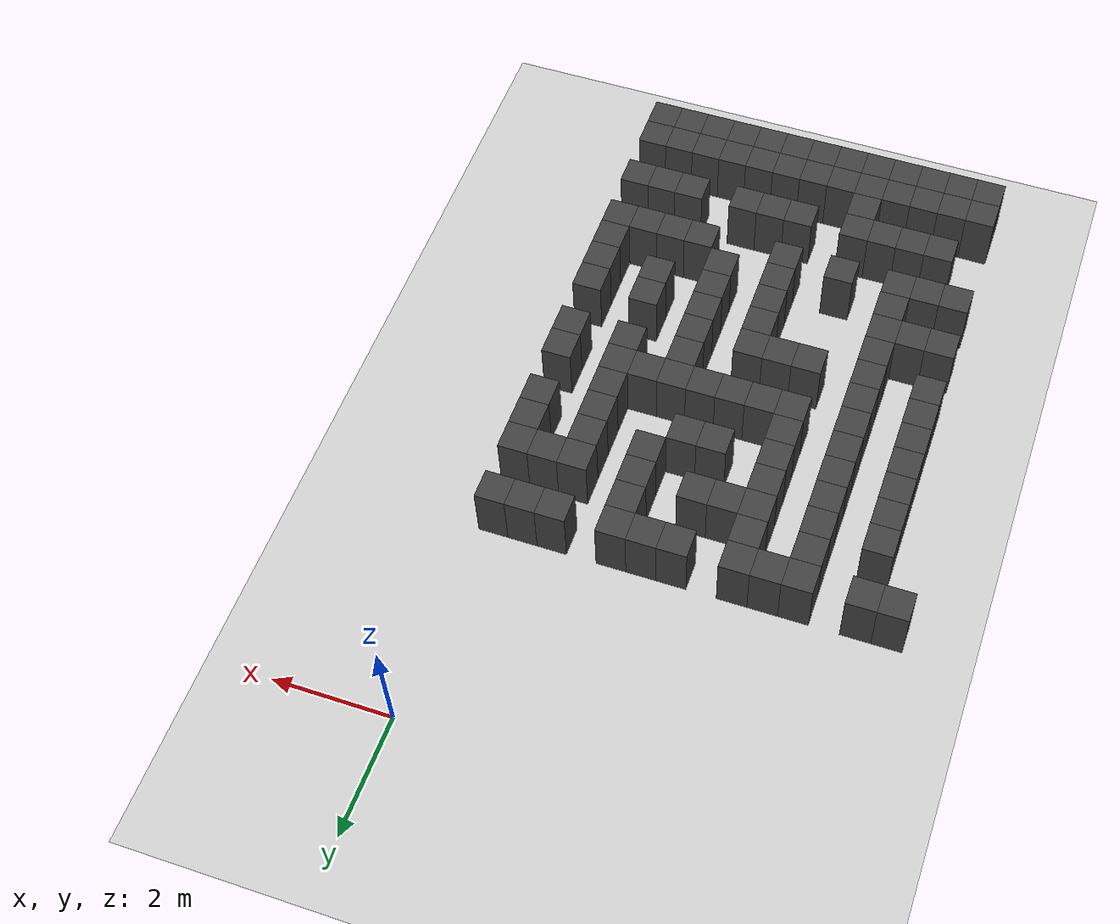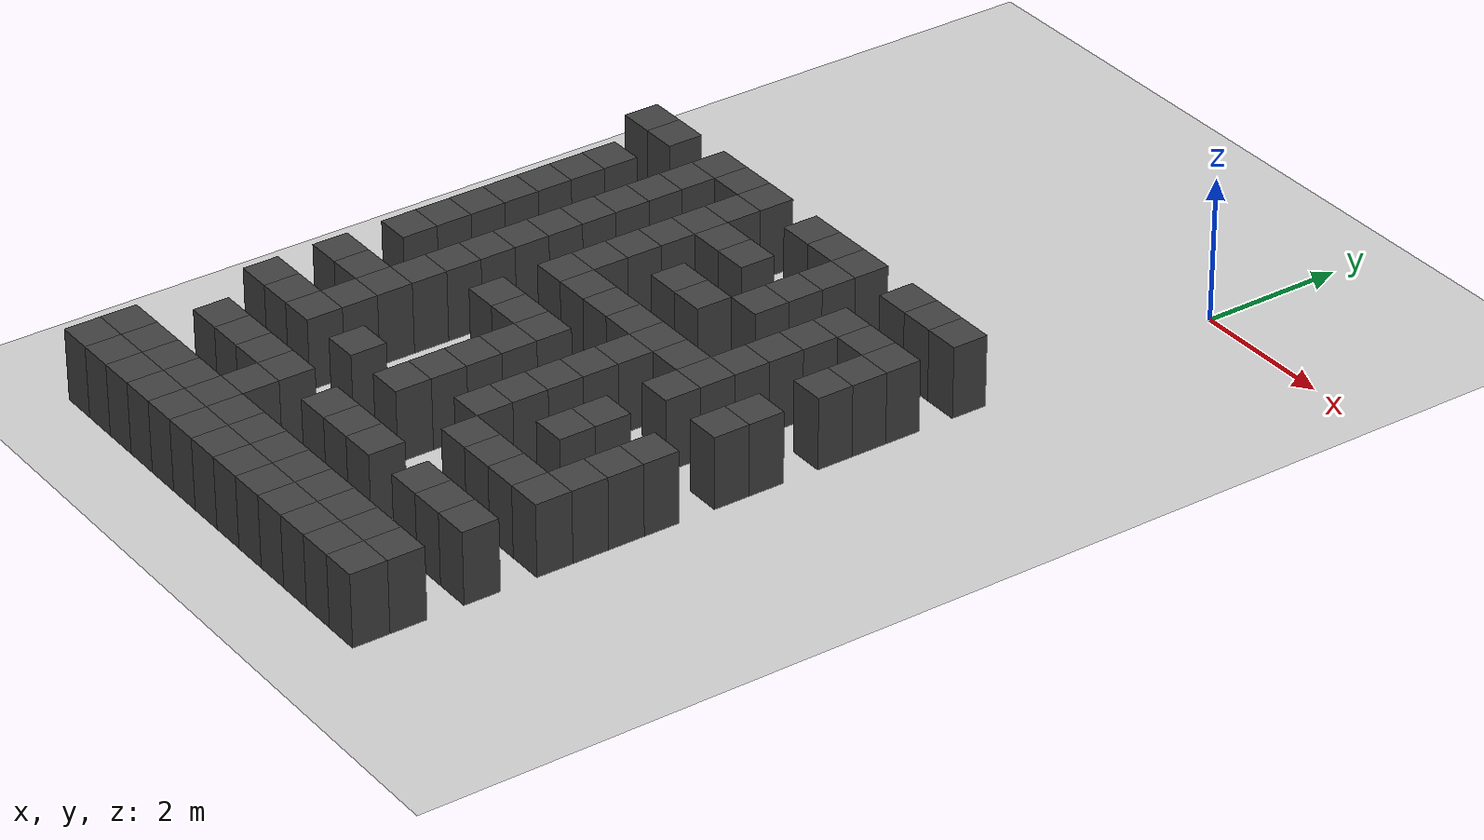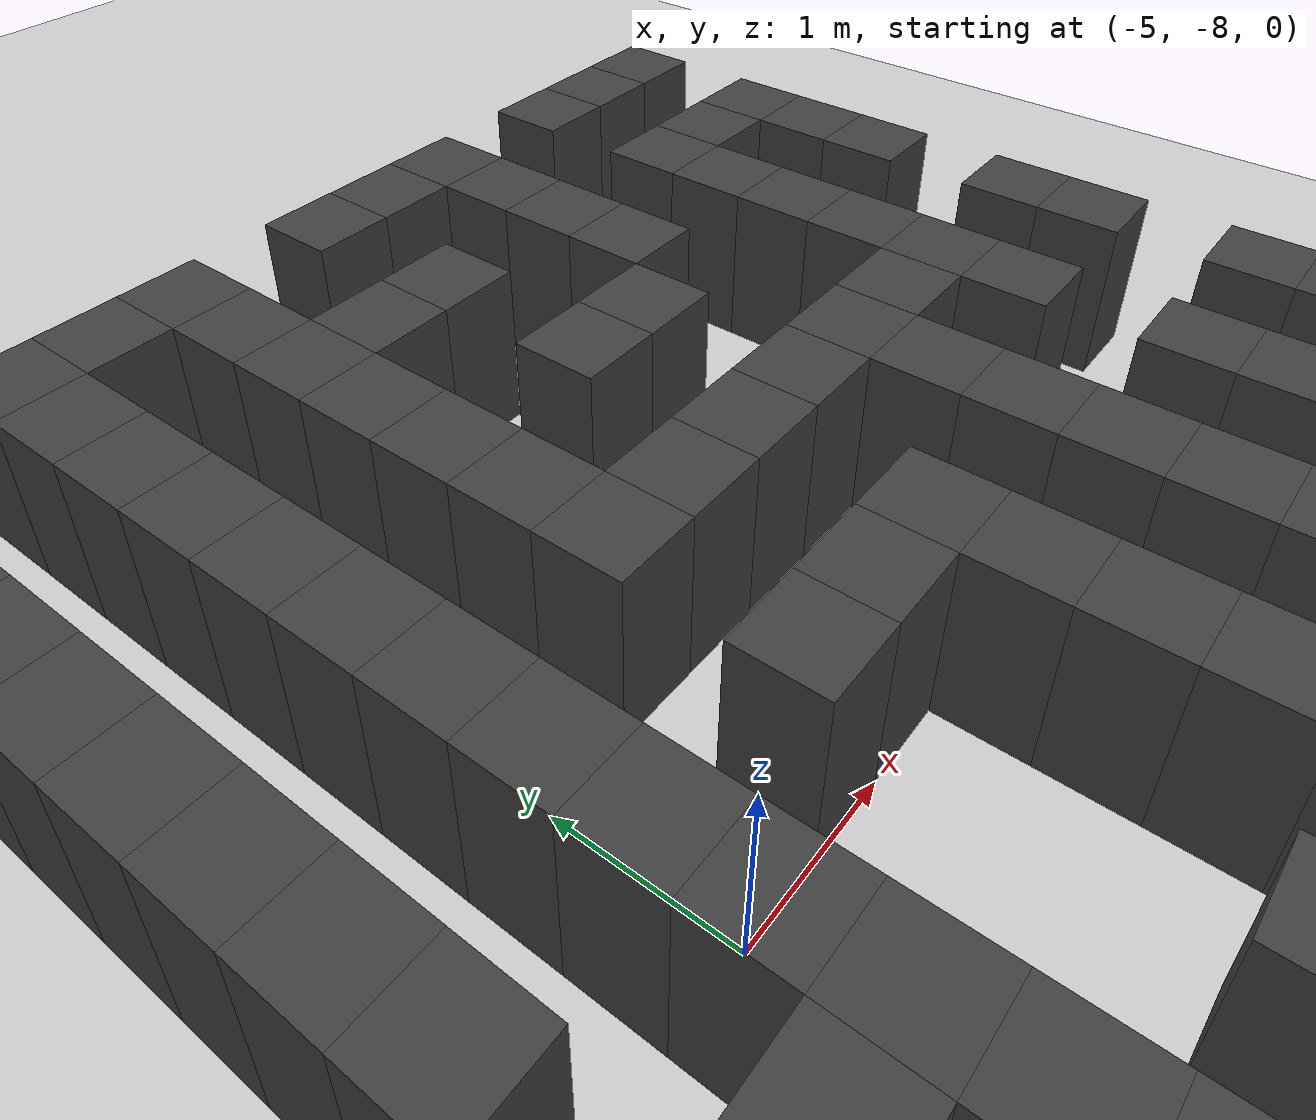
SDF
<sdf version="1.7">
 <world name="map_16271">
  <model name="ground_plane">
   <static>true</static>
   <link name="link">
    <collision name="collision">
     <geometry><plane><normal>0 0 1</normal><size>200 200</size></plane></geometry>
    </collision>
    <visual name="visual">
     <geometry><plane><normal>0 0 1</normal><size>200 200</size></plane></geometry>
     <material><ambient>0.8 0.8 0.8 1</ambient><diffuse>0.8 0.8 0.8 1</diffuse></material>
    </visual>
   </link>
  </model>
  <model name="maze_environment">
   <static>true</static>
   <link name="wall_770">
    <pose>-6.750 -3.750 0.500 0 0 0</pose>
    <collision name="col"><geometry><box><size>0.5 0.5 1.0</size></box></geometry></collision>
    <visual name="vis">
     <geometry><box><size>0.5 0.5 1.0</size></box></geometry>
     <material><ambient>0.15 0.15 0.15 1</ambient><diffuse>0.25 0.25 0.25 1</diffuse></material>
    </visual>
   </link>
   <link name="wall_771">
    <pose>-6.250 -3.750 0.500 0 0 0</pose>
    <collision name="col"><geometry><box><size>0.5 0.5 1.0</size></box></geometry></collision>
    <visual name="vis">
     <geometry><box><size>0.5 0.5 1.0</size></box></geometry>
     <material><ambient>0.15 0.15 0.15 1</ambient><diffuse>0.25 0.25 0.25 1</diffuse></material>
    </visual>
   </link>
   <link name="wall_772">
    <pose>-5.250 -3.750 0.500 0 0 0</pose>
    <collision name="col"><geometry><box><size>0.5 0.5 1.0</size></box></geometry></collision>
    <visual name="vis">
     <geometry><box><size>0.5 0.5 1.0</size></box></geometry>
     <material><ambient>0.15 0.15 0.15 1</ambient><diffuse>0.25 0.25 0.25 1</diffuse></material>
    </visual>
   </link>
   <link name="wall_773">
    <pose>-4.750 -3.750 0.500 0 0 0</pose>
    <collision name="col"><geometry><box><size>0.5 0.5 1.0</size></box></geometry></collision>
    <visual name="vis">
     <geometry><box><size>0.5 0.5 1.0</size></box></geometry>
     <material><ambient>0.15 0.15 0.15 1</ambient><diffuse>0.25 0.25 0.25 1</diffuse></material>
    </visual>
   </link>
   <link name="wall_774">
    <pose>-4.250 -3.750 0.500 0 0 0</pose>
    <collision name="col"><geometry><box><size>0.5 0.5 1.0</size></box></geometry></collision>
    <visual name="vis">
     <geometry><box><size>0.5 0.5 1.0</size></box></geometry>
     <material><ambient>0.15 0.15 0.15 1</ambient><diffuse>0.25 0.25 0.25 1</diffuse></material>
    </visual>
   </link>
   <link name="wall_775">
    <pose>-3.250 -3.750 0.500 0 0 0</pose>
    <collision name="col"><geometry><box><size>0.5 0.5 1.0</size></box></geometry></collision>
    <visual name="vis">
     <geometry><box><size>0.5 0.5 1.0</size></box></geometry>
     <material><ambient>0.15 0.15 0.15 1</ambient><diffuse>0.25 0.25 0.25 1</diffuse></material>
    </visual>
   </link>
   <link name="wall_776">
    <pose>-2.750 -3.750 0.500 0 0 0</pose>
    <collision name="col"><geometry><box><size>0.5 0.5 1.0</size></box></geometry></collision>
    <visual name="vis">
     <geometry><box><size>0.5 0.5 1.0</size></box></geometry>
     <material><ambient>0.15 0.15 0.15 1</ambient><diffuse>0.25 0.25 0.25 1</diffuse></material>
    </visual>
   </link>
   <link name="wall_777">
    <pose>-2.250 -3.750 0.500 0 0 0</pose>
    <collision name="col"><geometry><box><size>0.5 0.5 1.0</size></box></geometry></collision>
    <visual name="vis">
     <geometry><box><size>0.5 0.5 1.0</size></box></geometry>
     <material><ambient>0.15 0.15 0.15 1</ambient><diffuse>0.25 0.25 0.25 1</diffuse></material>
    </visual>
   </link>
   <link name="wall_778">
    <pose>-1.250 -3.750 0.500 0 0 0</pose>
    <collision name="col"><geometry><box><size>0.5 0.5 1.0</size></box></geometry></collision>
    <visual name="vis">
     <geometry><box><size>0.5 0.5 1.0</size></box></geometry>
     <material><ambient>0.15 0.15 0.15 1</ambient><diffuse>0.25 0.25 0.25 1</diffuse></material>
    </visual>
   </link>
   <link name="wall_779">
    <pose>-0.750 -3.750 0.500 0 0 0</pose>
    <collision name="col"><geometry><box><size>0.5 0.5 1.0</size></box></geometry></collision>
    <visual name="vis">
     <geometry><box><size>0.5 0.5 1.0</size></box></geometry>
     <material><ambient>0.15 0.15 0.15 1</ambient><diffuse>0.25 0.25 0.25 1</diffuse></material>
    </visual>
   </link>
   <link name="wall_780">
    <pose>-0.250 -3.750 0.500 0 0 0</pose>
    <collision name="col"><geometry><box><size>0.5 0.5 1.0</size></box></geometry></collision>
    <visual name="vis">
     <geometry><box><size>0.5 0.5 1.0</size></box></geometry>
     <material><ambient>0.15 0.15 0.15 1</ambient><diffuse>0.25 0.25 0.25 1</diffuse></material>
    </visual>
   </link>
   <link name="wall_801">
    <pose>-5.250 -4.250 0.500 0 0 0</pose>
    <collision name="col"><geometry><box><size>0.5 0.5 1.0</size></box></geometry></collision>
    <visual name="vis">
     <geometry><box><size>0.5 0.5 1.0</size></box></geometry>
     <material><ambient>0.15 0.15 0.15 1</ambient><diffuse>0.25 0.25 0.25 1</diffuse></material>
    </visual>
   </link>
   <link name="wall_802">
    <pose>-4.250 -4.250 0.500 0 0 0</pose>
    <collision name="col"><geometry><box><size>0.5 0.5 1.0</size></box></geometry></collision>
    <visual name="vis">
     <geometry><box><size>0.5 0.5 1.0</size></box></geometry>
     <material><ambient>0.15 0.15 0.15 1</ambient><diffuse>0.25 0.25 0.25 1</diffuse></material>
    </visual>
   </link>
   <link name="wall_803">
    <pose>-2.250 -4.250 0.500 0 0 0</pose>
    <collision name="col"><geometry><box><size>0.5 0.5 1.0</size></box></geometry></collision>
    <visual name="vis">
     <geometry><box><size>0.5 0.5 1.0</size></box></geometry>
     <material><ambient>0.15 0.15 0.15 1</ambient><diffuse>0.25 0.25 0.25 1</diffuse></material>
    </visual>
   </link>
   <link name="wall_819">
    <pose>-6.250 -4.750 0.500 0 0 0</pose>
    <collision name="col"><geometry><box><size>0.5 0.5 1.0</size></box></geometry></collision>
    <visual name="vis">
     <geometry><box><size>0.5 0.5 1.0</size></box></geometry>
     <material><ambient>0.15 0.15 0.15 1</ambient><diffuse>0.25 0.25 0.25 1</diffuse></material>
    </visual>
   </link>
   <link name="wall_820">
    <pose>-5.250 -4.750 0.500 0 0 0</pose>
    <collision name="col"><geometry><box><size>0.5 0.5 1.0</size></box></geometry></collision>
    <visual name="vis">
     <geometry><box><size>0.5 0.5 1.0</size></box></geometry>
     <material><ambient>0.15 0.15 0.15 1</ambient><diffuse>0.25 0.25 0.25 1</diffuse></material>
    </visual>
   </link>
   <link name="wall_821">
    <pose>-4.250 -4.750 0.500 0 0 0</pose>
    <collision name="col"><geometry><box><size>0.5 0.5 1.0</size></box></geometry></collision>
    <visual name="vis">
     <geometry><box><size>0.5 0.5 1.0</size></box></geometry>
     <material><ambient>0.15 0.15 0.15 1</ambient><diffuse>0.25 0.25 0.25 1</diffuse></material>
    </visual>
   </link>
   <link name="wall_822">
    <pose>-3.750 -4.750 0.500 0 0 0</pose>
    <collision name="col"><geometry><box><size>0.5 0.5 1.0</size></box></geometry></collision>
    <visual name="vis">
     <geometry><box><size>0.5 0.5 1.0</size></box></geometry>
     <material><ambient>0.15 0.15 0.15 1</ambient><diffuse>0.25 0.25 0.25 1</diffuse></material>
    </visual>
   </link>
   <link name="wall_823">
    <pose>-3.250 -4.750 0.500 0 0 0</pose>
    <collision name="col"><geometry><box><size>0.5 0.5 1.0</size></box></geometry></collision>
    <visual name="vis">
     <geometry><box><size>0.5 0.5 1.0</size></box></geometry>
     <material><ambient>0.15 0.15 0.15 1</ambient><diffuse>0.25 0.25 0.25 1</diffuse></material>
    </visual>
   </link>
   <link name="wall_824">
    <pose>-2.250 -4.750 0.500 0 0 0</pose>
    <collision name="col"><geometry><box><size>0.5 0.5 1.0</size></box></geometry></collision>
    <visual name="vis">
     <geometry><box><size>0.5 0.5 1.0</size></box></geometry>
     <material><ambient>0.15 0.15 0.15 1</ambient><diffuse>0.25 0.25 0.25 1</diffuse></material>
    </visual>
   </link>
   <link name="wall_825">
    <pose>-1.250 -4.750 0.500 0 0 0</pose>
    <collision name="col"><geometry><box><size>0.5 0.5 1.0</size></box></geometry></collision>
    <visual name="vis">
     <geometry><box><size>0.5 0.5 1.0</size></box></geometry>
     <material><ambient>0.15 0.15 0.15 1</ambient><diffuse>0.25 0.25 0.25 1</diffuse></material>
    </visual>
   </link>
   <link name="wall_826">
    <pose>-0.750 -4.750 0.500 0 0 0</pose>
    <collision name="col"><geometry><box><size>0.5 0.5 1.0</size></box></geometry></collision>
    <visual name="vis">
     <geometry><box><size>0.5 0.5 1.0</size></box></geometry>
     <material><ambient>0.15 0.15 0.15 1</ambient><diffuse>0.25 0.25 0.25 1</diffuse></material>
    </visual>
   </link>
   <link name="wall_827">
    <pose>-0.250 -4.750 0.500 0 0 0</pose>
    <collision name="col"><geometry><box><size>0.5 0.5 1.0</size></box></geometry></collision>
    <visual name="vis">
     <geometry><box><size>0.5 0.5 1.0</size></box></geometry>
     <material><ambient>0.15 0.15 0.15 1</ambient><diffuse>0.25 0.25 0.25 1</diffuse></material>
    </visual>
   </link>
   <link name="wall_849">
    <pose>-6.250 -5.250 0.500 0 0 0</pose>
    <collision name="col"><geometry><box><size>0.5 0.5 1.0</size></box></geometry></collision>
    <visual name="vis">
     <geometry><box><size>0.5 0.5 1.0</size></box></geometry>
     <material><ambient>0.15 0.15 0.15 1</ambient><diffuse>0.25 0.25 0.25 1</diffuse></material>
    </visual>
   </link>
   <link name="wall_850">
    <pose>-5.250 -5.250 0.500 0 0 0</pose>
    <collision name="col"><geometry><box><size>0.5 0.5 1.0</size></box></geometry></collision>
    <visual name="vis">
     <geometry><box><size>0.5 0.5 1.0</size></box></geometry>
     <material><ambient>0.15 0.15 0.15 1</ambient><diffuse>0.25 0.25 0.25 1</diffuse></material>
    </visual>
   </link>
   <link name="wall_851">
    <pose>-4.250 -5.250 0.500 0 0 0</pose>
    <collision name="col"><geometry><box><size>0.5 0.5 1.0</size></box></geometry></collision>
    <visual name="vis">
     <geometry><box><size>0.5 0.5 1.0</size></box></geometry>
     <material><ambient>0.15 0.15 0.15 1</ambient><diffuse>0.25 0.25 0.25 1</diffuse></material>
    </visual>
   </link>
   <link name="wall_852">
    <pose>-2.250 -5.250 0.500 0 0 0</pose>
    <collision name="col"><geometry><box><size>0.5 0.5 1.0</size></box></geometry></collision>
    <visual name="vis">
     <geometry><box><size>0.5 0.5 1.0</size></box></geometry>
     <material><ambient>0.15 0.15 0.15 1</ambient><diffuse>0.25 0.25 0.25 1</diffuse></material>
    </visual>
   </link>
   <link name="wall_853">
    <pose>-1.250 -5.250 0.500 0 0 0</pose>
    <collision name="col"><geometry><box><size>0.5 0.5 1.0</size></box></geometry></collision>
    <visual name="vis">
     <geometry><box><size>0.5 0.5 1.0</size></box></geometry>
     <material><ambient>0.15 0.15 0.15 1</ambient><diffuse>0.25 0.25 0.25 1</diffuse></material>
    </visual>
   </link>
   <link name="wall_854">
    <pose>-0.250 -5.250 0.500 0 0 0</pose>
    <collision name="col"><geometry><box><size>0.5 0.5 1.0</size></box></geometry></collision>
    <visual name="vis">
     <geometry><box><size>0.5 0.5 1.0</size></box></geometry>
     <material><ambient>0.15 0.15 0.15 1</ambient><diffuse>0.25 0.25 0.25 1</diffuse></material>
    </visual>
   </link>
   <link name="wall_868">
    <pose>-6.250 -5.750 0.500 0 0 0</pose>
    <collision name="col"><geometry><box><size>0.5 0.5 1.0</size></box></geometry></collision>
    <visual name="vis">
     <geometry><box><size>0.5 0.5 1.0</size></box></geometry>
     <material><ambient>0.15 0.15 0.15 1</ambient><diffuse>0.25 0.25 0.25 1</diffuse></material>
    </visual>
   </link>
   <link name="wall_869">
    <pose>-5.250 -5.750 0.500 0 0 0</pose>
    <collision name="col"><geometry><box><size>0.5 0.5 1.0</size></box></geometry></collision>
    <visual name="vis">
     <geometry><box><size>0.5 0.5 1.0</size></box></geometry>
     <material><ambient>0.15 0.15 0.15 1</ambient><diffuse>0.25 0.25 0.25 1</diffuse></material>
    </visual>
   </link>
   <link name="wall_870">
    <pose>-4.250 -5.750 0.500 0 0 0</pose>
    <collision name="col"><geometry><box><size>0.5 0.5 1.0</size></box></geometry></collision>
    <visual name="vis">
     <geometry><box><size>0.5 0.5 1.0</size></box></geometry>
     <material><ambient>0.15 0.15 0.15 1</ambient><diffuse>0.25 0.25 0.25 1</diffuse></material>
    </visual>
   </link>
   <link name="wall_871">
    <pose>-3.250 -5.750 0.500 0 0 0</pose>
    <collision name="col"><geometry><box><size>0.5 0.5 1.0</size></box></geometry></collision>
    <visual name="vis">
     <geometry><box><size>0.5 0.5 1.0</size></box></geometry>
     <material><ambient>0.15 0.15 0.15 1</ambient><diffuse>0.25 0.25 0.25 1</diffuse></material>
    </visual>
   </link>
   <link name="wall_872">
    <pose>-2.750 -5.750 0.500 0 0 0</pose>
    <collision name="col"><geometry><box><size>0.5 0.5 1.0</size></box></geometry></collision>
    <visual name="vis">
     <geometry><box><size>0.5 0.5 1.0</size></box></geometry>
     <material><ambient>0.15 0.15 0.15 1</ambient><diffuse>0.25 0.25 0.25 1</diffuse></material>
    </visual>
   </link>
   <link name="wall_873">
    <pose>-1.250 -5.750 0.500 0 0 0</pose>
    <collision name="col"><geometry><box><size>0.5 0.5 1.0</size></box></geometry></collision>
    <visual name="vis">
     <geometry><box><size>0.5 0.5 1.0</size></box></geometry>
     <material><ambient>0.15 0.15 0.15 1</ambient><diffuse>0.25 0.25 0.25 1</diffuse></material>
    </visual>
   </link>
   <link name="wall_874">
    <pose>-0.250 -5.750 0.500 0 0 0</pose>
    <collision name="col"><geometry><box><size>0.5 0.5 1.0</size></box></geometry></collision>
    <visual name="vis">
     <geometry><box><size>0.5 0.5 1.0</size></box></geometry>
     <material><ambient>0.15 0.15 0.15 1</ambient><diffuse>0.25 0.25 0.25 1</diffuse></material>
    </visual>
   </link>
   <link name="wall_896">
    <pose>-6.250 -6.250 0.500 0 0 0</pose>
    <collision name="col"><geometry><box><size>0.5 0.5 1.0</size></box></geometry></collision>
    <visual name="vis">
     <geometry><box><size>0.5 0.5 1.0</size></box></geometry>
     <material><ambient>0.15 0.15 0.15 1</ambient><diffuse>0.25 0.25 0.25 1</diffuse></material>
    </visual>
   </link>
   <link name="wall_897">
    <pose>-5.250 -6.250 0.500 0 0 0</pose>
    <collision name="col"><geometry><box><size>0.5 0.5 1.0</size></box></geometry></collision>
    <visual name="vis">
     <geometry><box><size>0.5 0.5 1.0</size></box></geometry>
     <material><ambient>0.15 0.15 0.15 1</ambient><diffuse>0.25 0.25 0.25 1</diffuse></material>
    </visual>
   </link>
   <link name="wall_898">
    <pose>-4.250 -6.250 0.500 0 0 0</pose>
    <collision name="col"><geometry><box><size>0.5 0.5 1.0</size></box></geometry></collision>
    <visual name="vis">
     <geometry><box><size>0.5 0.5 1.0</size></box></geometry>
     <material><ambient>0.15 0.15 0.15 1</ambient><diffuse>0.25 0.25 0.25 1</diffuse></material>
    </visual>
   </link>
   <link name="wall_899">
    <pose>-1.250 -6.250 0.500 0 0 0</pose>
    <collision name="col"><geometry><box><size>0.5 0.5 1.0</size></box></geometry></collision>
    <visual name="vis">
     <geometry><box><size>0.5 0.5 1.0</size></box></geometry>
     <material><ambient>0.15 0.15 0.15 1</ambient><diffuse>0.25 0.25 0.25 1</diffuse></material>
    </visual>
   </link>
   <link name="wall_917">
    <pose>-6.250 -6.750 0.500 0 0 0</pose>
    <collision name="col"><geometry><box><size>0.5 0.5 1.0</size></box></geometry></collision>
    <visual name="vis">
     <geometry><box><size>0.5 0.5 1.0</size></box></geometry>
     <material><ambient>0.15 0.15 0.15 1</ambient><diffuse>0.25 0.25 0.25 1</diffuse></material>
    </visual>
   </link>
   <link name="wall_918">
    <pose>-5.250 -6.750 0.500 0 0 0</pose>
    <collision name="col"><geometry><box><size>0.5 0.5 1.0</size></box></geometry></collision>
    <visual name="vis">
     <geometry><box><size>0.5 0.5 1.0</size></box></geometry>
     <material><ambient>0.15 0.15 0.15 1</ambient><diffuse>0.25 0.25 0.25 1</diffuse></material>
    </visual>
   </link>
   <link name="wall_919">
    <pose>-4.250 -6.750 0.500 0 0 0</pose>
    <collision name="col"><geometry><box><size>0.5 0.5 1.0</size></box></geometry></collision>
    <visual name="vis">
     <geometry><box><size>0.5 0.5 1.0</size></box></geometry>
     <material><ambient>0.15 0.15 0.15 1</ambient><diffuse>0.25 0.25 0.25 1</diffuse></material>
    </visual>
   </link>
   <link name="wall_920">
    <pose>-3.750 -6.750 0.500 0 0 0</pose>
    <collision name="col"><geometry><box><size>0.5 0.5 1.0</size></box></geometry></collision>
    <visual name="vis">
     <geometry><box><size>0.5 0.5 1.0</size></box></geometry>
     <material><ambient>0.15 0.15 0.15 1</ambient><diffuse>0.25 0.25 0.25 1</diffuse></material>
    </visual>
   </link>
   <link name="wall_921">
    <pose>-3.250 -6.750 0.500 0 0 0</pose>
    <collision name="col"><geometry><box><size>0.5 0.5 1.0</size></box></geometry></collision>
    <visual name="vis">
     <geometry><box><size>0.5 0.5 1.0</size></box></geometry>
     <material><ambient>0.15 0.15 0.15 1</ambient><diffuse>0.25 0.25 0.25 1</diffuse></material>
    </visual>
   </link>
   <link name="wall_922">
    <pose>-2.750 -6.750 0.500 0 0 0</pose>
    <collision name="col"><geometry><box><size>0.5 0.5 1.0</size></box></geometry></collision>
    <visual name="vis">
     <geometry><box><size>0.5 0.5 1.0</size></box></geometry>
     <material><ambient>0.15 0.15 0.15 1</ambient><diffuse>0.25 0.25 0.25 1</diffuse></material>
    </visual>
   </link>
   <link name="wall_923">
    <pose>-2.250 -6.750 0.500 0 0 0</pose>
    <collision name="col"><geometry><box><size>0.5 0.5 1.0</size></box></geometry></collision>
    <visual name="vis">
     <geometry><box><size>0.5 0.5 1.0</size></box></geometry>
     <material><ambient>0.15 0.15 0.15 1</ambient><diffuse>0.25 0.25 0.25 1</diffuse></material>
    </visual>
   </link>
   <link name="wall_924">
    <pose>-1.750 -6.750 0.500 0 0 0</pose>
    <collision name="col"><geometry><box><size>0.5 0.5 1.0</size></box></geometry></collision>
    <visual name="vis">
     <geometry><box><size>0.5 0.5 1.0</size></box></geometry>
     <material><ambient>0.15 0.15 0.15 1</ambient><diffuse>0.25 0.25 0.25 1</diffuse></material>
    </visual>
   </link>
   <link name="wall_925">
    <pose>-1.250 -6.750 0.500 0 0 0</pose>
    <collision name="col"><geometry><box><size>0.5 0.5 1.0</size></box></geometry></collision>
    <visual name="vis">
     <geometry><box><size>0.5 0.5 1.0</size></box></geometry>
     <material><ambient>0.15 0.15 0.15 1</ambient><diffuse>0.25 0.25 0.25 1</diffuse></material>
    </visual>
   </link>
   <link name="wall_926">
    <pose>-0.250 -6.750 0.500 0 0 0</pose>
    <collision name="col"><geometry><box><size>0.5 0.5 1.0</size></box></geometry></collision>
    <visual name="vis">
     <geometry><box><size>0.5 0.5 1.0</size></box></geometry>
     <material><ambient>0.15 0.15 0.15 1</ambient><diffuse>0.25 0.25 0.25 1</diffuse></material>
    </visual>
   </link>
   <link name="wall_945">
    <pose>-6.250 -7.250 0.500 0 0 0</pose>
    <collision name="col"><geometry><box><size>0.5 0.5 1.0</size></box></geometry></collision>
    <visual name="vis">
     <geometry><box><size>0.5 0.5 1.0</size></box></geometry>
     <material><ambient>0.15 0.15 0.15 1</ambient><diffuse>0.25 0.25 0.25 1</diffuse></material>
    </visual>
   </link>
   <link name="wall_946">
    <pose>-5.250 -7.250 0.500 0 0 0</pose>
    <collision name="col"><geometry><box><size>0.5 0.5 1.0</size></box></geometry></collision>
    <visual name="vis">
     <geometry><box><size>0.5 0.5 1.0</size></box></geometry>
     <material><ambient>0.15 0.15 0.15 1</ambient><diffuse>0.25 0.25 0.25 1</diffuse></material>
    </visual>
   </link>
   <link name="wall_947">
    <pose>-2.250 -7.250 0.500 0 0 0</pose>
    <collision name="col"><geometry><box><size>0.5 0.5 1.0</size></box></geometry></collision>
    <visual name="vis">
     <geometry><box><size>0.5 0.5 1.0</size></box></geometry>
     <material><ambient>0.15 0.15 0.15 1</ambient><diffuse>0.25 0.25 0.25 1</diffuse></material>
    </visual>
   </link>
   <link name="wall_948">
    <pose>-1.250 -7.250 0.500 0 0 0</pose>
    <collision name="col"><geometry><box><size>0.5 0.5 1.0</size></box></geometry></collision>
    <visual name="vis">
     <geometry><box><size>0.5 0.5 1.0</size></box></geometry>
     <material><ambient>0.15 0.15 0.15 1</ambient><diffuse>0.25 0.25 0.25 1</diffuse></material>
    </visual>
   </link>
   <link name="wall_949">
    <pose>-0.250 -7.250 0.500 0 0 0</pose>
    <collision name="col"><geometry><box><size>0.5 0.5 1.0</size></box></geometry></collision>
    <visual name="vis">
     <geometry><box><size>0.5 0.5 1.0</size></box></geometry>
     <material><ambient>0.15 0.15 0.15 1</ambient><diffuse>0.25 0.25 0.25 1</diffuse></material>
    </visual>
   </link>
   <link name="wall_967">
    <pose>-6.250 -7.750 0.500 0 0 0</pose>
    <collision name="col"><geometry><box><size>0.5 0.5 1.0</size></box></geometry></collision>
    <visual name="vis">
     <geometry><box><size>0.5 0.5 1.0</size></box></geometry>
     <material><ambient>0.15 0.15 0.15 1</ambient><diffuse>0.25 0.25 0.25 1</diffuse></material>
    </visual>
   </link>
   <link name="wall_968">
    <pose>-5.250 -7.750 0.500 0 0 0</pose>
    <collision name="col"><geometry><box><size>0.5 0.5 1.0</size></box></geometry></collision>
    <visual name="vis">
     <geometry><box><size>0.5 0.5 1.0</size></box></geometry>
     <material><ambient>0.15 0.15 0.15 1</ambient><diffuse>0.25 0.25 0.25 1</diffuse></material>
    </visual>
   </link>
   <link name="wall_969">
    <pose>-4.250 -7.750 0.500 0 0 0</pose>
    <collision name="col"><geometry><box><size>0.5 0.5 1.0</size></box></geometry></collision>
    <visual name="vis">
     <geometry><box><size>0.5 0.5 1.0</size></box></geometry>
     <material><ambient>0.15 0.15 0.15 1</ambient><diffuse>0.25 0.25 0.25 1</diffuse></material>
    </visual>
   </link>
   <link name="wall_970">
    <pose>-3.750 -7.750 0.500 0 0 0</pose>
    <collision name="col"><geometry><box><size>0.5 0.5 1.0</size></box></geometry></collision>
    <visual name="vis">
     <geometry><box><size>0.5 0.5 1.0</size></box></geometry>
     <material><ambient>0.15 0.15 0.15 1</ambient><diffuse>0.25 0.25 0.25 1</diffuse></material>
    </visual>
   </link>
   <link name="wall_971">
    <pose>-3.250 -7.750 0.500 0 0 0</pose>
    <collision name="col"><geometry><box><size>0.5 0.5 1.0</size></box></geometry></collision>
    <visual name="vis">
     <geometry><box><size>0.5 0.5 1.0</size></box></geometry>
     <material><ambient>0.15 0.15 0.15 1</ambient><diffuse>0.25 0.25 0.25 1</diffuse></material>
    </visual>
   </link>
   <link name="wall_972">
    <pose>-2.250 -7.750 0.500 0 0 0</pose>
    <collision name="col"><geometry><box><size>0.5 0.5 1.0</size></box></geometry></collision>
    <visual name="vis">
     <geometry><box><size>0.5 0.5 1.0</size></box></geometry>
     <material><ambient>0.15 0.15 0.15 1</ambient><diffuse>0.25 0.25 0.25 1</diffuse></material>
    </visual>
   </link>
   <link name="wall_993">
    <pose>-5.250 -8.250 0.500 0 0 0</pose>
    <collision name="col"><geometry><box><size>0.5 0.5 1.0</size></box></geometry></collision>
    <visual name="vis">
     <geometry><box><size>0.5 0.5 1.0</size></box></geometry>
     <material><ambient>0.15 0.15 0.15 1</ambient><diffuse>0.25 0.25 0.25 1</diffuse></material>
    </visual>
   </link>
   <link name="wall_994">
    <pose>-3.250 -8.250 0.500 0 0 0</pose>
    <collision name="col"><geometry><box><size>0.5 0.5 1.0</size></box></geometry></collision>
    <visual name="vis">
     <geometry><box><size>0.5 0.5 1.0</size></box></geometry>
     <material><ambient>0.15 0.15 0.15 1</ambient><diffuse>0.25 0.25 0.25 1</diffuse></material>
    </visual>
   </link>
   <link name="wall_995">
    <pose>-2.250 -8.250 0.500 0 0 0</pose>
    <collision name="col"><geometry><box><size>0.5 0.5 1.0</size></box></geometry></collision>
    <visual name="vis">
     <geometry><box><size>0.5 0.5 1.0</size></box></geometry>
     <material><ambient>0.15 0.15 0.15 1</ambient><diffuse>0.25 0.25 0.25 1</diffuse></material>
    </visual>
   </link>
   <link name="wall_996">
    <pose>-1.250 -8.250 0.500 0 0 0</pose>
    <collision name="col"><geometry><box><size>0.5 0.5 1.0</size></box></geometry></collision>
    <visual name="vis">
     <geometry><box><size>0.5 0.5 1.0</size></box></geometry>
     <material><ambient>0.15 0.15 0.15 1</ambient><diffuse>0.25 0.25 0.25 1</diffuse></material>
    </visual>
   </link>
   <link name="wall_997">
    <pose>-0.250 -8.250 0.500 0 0 0</pose>
    <collision name="col"><geometry><box><size>0.5 0.5 1.0</size></box></geometry></collision>
    <visual name="vis">
     <geometry><box><size>0.5 0.5 1.0</size></box></geometry>
     <material><ambient>0.15 0.15 0.15 1</ambient><diffuse>0.25 0.25 0.25 1</diffuse></material>
    </visual>
   </link>
   <link name="wall_1017">
    <pose>-6.250 -8.750 0.500 0 0 0</pose>
    <collision name="col"><geometry><box><size>0.5 0.5 1.0</size></box></geometry></collision>
    <visual name="vis">
     <geometry><box><size>0.5 0.5 1.0</size></box></geometry>
     <material><ambient>0.15 0.15 0.15 1</ambient><diffuse>0.25 0.25 0.25 1</diffuse></material>
    </visual>
   </link>
   <link name="wall_1018">
    <pose>-5.750 -8.750 0.500 0 0 0</pose>
    <collision name="col"><geometry><box><size>0.5 0.5 1.0</size></box></geometry></collision>
    <visual name="vis">
     <geometry><box><size>0.5 0.5 1.0</size></box></geometry>
     <material><ambient>0.15 0.15 0.15 1</ambient><diffuse>0.25 0.25 0.25 1</diffuse></material>
    </visual>
   </link>
   <link name="wall_1019">
    <pose>-5.250 -8.750 0.500 0 0 0</pose>
    <collision name="col"><geometry><box><size>0.5 0.5 1.0</size></box></geometry></collision>
    <visual name="vis">
     <geometry><box><size>0.5 0.5 1.0</size></box></geometry>
     <material><ambient>0.15 0.15 0.15 1</ambient><diffuse>0.25 0.25 0.25 1</diffuse></material>
    </visual>
   </link>
   <link name="wall_1020">
    <pose>-3.250 -8.750 0.500 0 0 0</pose>
    <collision name="col"><geometry><box><size>0.5 0.5 1.0</size></box></geometry></collision>
    <visual name="vis">
     <geometry><box><size>0.5 0.5 1.0</size></box></geometry>
     <material><ambient>0.15 0.15 0.15 1</ambient><diffuse>0.25 0.25 0.25 1</diffuse></material>
    </visual>
   </link>
   <link name="wall_1021">
    <pose>-2.250 -8.750 0.500 0 0 0</pose>
    <collision name="col"><geometry><box><size>0.5 0.5 1.0</size></box></geometry></collision>
    <visual name="vis">
     <geometry><box><size>0.5 0.5 1.0</size></box></geometry>
     <material><ambient>0.15 0.15 0.15 1</ambient><diffuse>0.25 0.25 0.25 1</diffuse></material>
    </visual>
   </link>
   <link name="wall_1022">
    <pose>-1.250 -8.750 0.500 0 0 0</pose>
    <collision name="col"><geometry><box><size>0.5 0.5 1.0</size></box></geometry></collision>
    <visual name="vis">
     <geometry><box><size>0.5 0.5 1.0</size></box></geometry>
     <material><ambient>0.15 0.15 0.15 1</ambient><diffuse>0.25 0.25 0.25 1</diffuse></material>
    </visual>
   </link>
   <link name="wall_1023">
    <pose>-0.250 -8.750 0.500 0 0 0</pose>
    <collision name="col"><geometry><box><size>0.5 0.5 1.0</size></box></geometry></collision>
    <visual name="vis">
     <geometry><box><size>0.5 0.5 1.0</size></box></geometry>
     <material><ambient>0.15 0.15 0.15 1</ambient><diffuse>0.25 0.25 0.25 1</diffuse></material>
    </visual>
   </link>
   <link name="wall_1043">
    <pose>-5.250 -9.250 0.500 0 0 0</pose>
    <collision name="col"><geometry><box><size>0.5 0.5 1.0</size></box></geometry></collision>
    <visual name="vis">
     <geometry><box><size>0.5 0.5 1.0</size></box></geometry>
     <material><ambient>0.15 0.15 0.15 1</ambient><diffuse>0.25 0.25 0.25 1</diffuse></material>
    </visual>
   </link>
   <link name="wall_1044">
    <pose>-3.250 -9.250 0.500 0 0 0</pose>
    <collision name="col"><geometry><box><size>0.5 0.5 1.0</size></box></geometry></collision>
    <visual name="vis">
     <geometry><box><size>0.5 0.5 1.0</size></box></geometry>
     <material><ambient>0.15 0.15 0.15 1</ambient><diffuse>0.25 0.25 0.25 1</diffuse></material>
    </visual>
   </link>
   <link name="wall_1045">
    <pose>-2.250 -9.250 0.500 0 0 0</pose>
    <collision name="col"><geometry><box><size>0.5 0.5 1.0</size></box></geometry></collision>
    <visual name="vis">
     <geometry><box><size>0.5 0.5 1.0</size></box></geometry>
     <material><ambient>0.15 0.15 0.15 1</ambient><diffuse>0.25 0.25 0.25 1</diffuse></material>
    </visual>
   </link>
   <link name="wall_1046">
    <pose>-0.250 -9.250 0.500 0 0 0</pose>
    <collision name="col"><geometry><box><size>0.5 0.5 1.0</size></box></geometry></collision>
    <visual name="vis">
     <geometry><box><size>0.5 0.5 1.0</size></box></geometry>
     <material><ambient>0.15 0.15 0.15 1</ambient><diffuse>0.25 0.25 0.25 1</diffuse></material>
    </visual>
   </link>
   <link name="wall_1062">
    <pose>-6.250 -9.750 0.500 0 0 0</pose>
    <collision name="col"><geometry><box><size>0.5 0.5 1.0</size></box></geometry></collision>
    <visual name="vis">
     <geometry><box><size>0.5 0.5 1.0</size></box></geometry>
     <material><ambient>0.15 0.15 0.15 1</ambient><diffuse>0.25 0.25 0.25 1</diffuse></material>
    </visual>
   </link>
   <link name="wall_1063">
    <pose>-5.750 -9.750 0.500 0 0 0</pose>
    <collision name="col"><geometry><box><size>0.5 0.5 1.0</size></box></geometry></collision>
    <visual name="vis">
     <geometry><box><size>0.5 0.5 1.0</size></box></geometry>
     <material><ambient>0.15 0.15 0.15 1</ambient><diffuse>0.25 0.25 0.25 1</diffuse></material>
    </visual>
   </link>
   <link name="wall_1064">
    <pose>-5.250 -9.750 0.500 0 0 0</pose>
    <collision name="col"><geometry><box><size>0.5 0.5 1.0</size></box></geometry></collision>
    <visual name="vis">
     <geometry><box><size>0.5 0.5 1.0</size></box></geometry>
     <material><ambient>0.15 0.15 0.15 1</ambient><diffuse>0.25 0.25 0.25 1</diffuse></material>
    </visual>
   </link>
   <link name="wall_1065">
    <pose>-4.250 -9.750 0.500 0 0 0</pose>
    <collision name="col"><geometry><box><size>0.5 0.5 1.0</size></box></geometry></collision>
    <visual name="vis">
     <geometry><box><size>0.5 0.5 1.0</size></box></geometry>
     <material><ambient>0.15 0.15 0.15 1</ambient><diffuse>0.25 0.25 0.25 1</diffuse></material>
    </visual>
   </link>
   <link name="wall_1066">
    <pose>-3.250 -9.750 0.500 0 0 0</pose>
    <collision name="col"><geometry><box><size>0.5 0.5 1.0</size></box></geometry></collision>
    <visual name="vis">
     <geometry><box><size>0.5 0.5 1.0</size></box></geometry>
     <material><ambient>0.15 0.15 0.15 1</ambient><diffuse>0.25 0.25 0.25 1</diffuse></material>
    </visual>
   </link>
   <link name="wall_1067">
    <pose>-1.750 -9.750 0.500 0 0 0</pose>
    <collision name="col"><geometry><box><size>0.5 0.5 1.0</size></box></geometry></collision>
    <visual name="vis">
     <geometry><box><size>0.5 0.5 1.0</size></box></geometry>
     <material><ambient>0.15 0.15 0.15 1</ambient><diffuse>0.25 0.25 0.25 1</diffuse></material>
    </visual>
   </link>
   <link name="wall_1068">
    <pose>-1.250 -9.750 0.500 0 0 0</pose>
    <collision name="col"><geometry><box><size>0.5 0.5 1.0</size></box></geometry></collision>
    <visual name="vis">
     <geometry><box><size>0.5 0.5 1.0</size></box></geometry>
     <material><ambient>0.15 0.15 0.15 1</ambient><diffuse>0.25 0.25 0.25 1</diffuse></material>
    </visual>
   </link>
   <link name="wall_1069">
    <pose>-0.750 -9.750 0.500 0 0 0</pose>
    <collision name="col"><geometry><box><size>0.5 0.5 1.0</size></box></geometry></collision>
    <visual name="vis">
     <geometry><box><size>0.5 0.5 1.0</size></box></geometry>
     <material><ambient>0.15 0.15 0.15 1</ambient><diffuse>0.25 0.25 0.25 1</diffuse></material>
    </visual>
   </link>
   <link name="wall_1070">
    <pose>-0.250 -9.750 0.500 0 0 0</pose>
    <collision name="col"><geometry><box><size>0.5 0.5 1.0</size></box></geometry></collision>
    <visual name="vis">
     <geometry><box><size>0.5 0.5 1.0</size></box></geometry>
     <material><ambient>0.15 0.15 0.15 1</ambient><diffuse>0.25 0.25 0.25 1</diffuse></material>
    </visual>
   </link>
   <link name="wall_1104">
    <pose>-5.750 -10.750 0.500 0 0 0</pose>
    <collision name="col"><geometry><box><size>0.5 0.5 1.0</size></box></geometry></collision>
    <visual name="vis">
     <geometry><box><size>0.5 0.5 1.0</size></box></geometry>
     <material><ambient>0.15 0.15 0.15 1</ambient><diffuse>0.25 0.25 0.25 1</diffuse></material>
    </visual>
   </link>
   <link name="wall_1105">
    <pose>-5.250 -10.750 0.500 0 0 0</pose>
    <collision name="col"><geometry><box><size>0.5 0.5 1.0</size></box></geometry></collision>
    <visual name="vis">
     <geometry><box><size>0.5 0.5 1.0</size></box></geometry>
     <material><ambient>0.15 0.15 0.15 1</ambient><diffuse>0.25 0.25 0.25 1</diffuse></material>
    </visual>
   </link>
   <link name="wall_1106">
    <pose>-4.750 -10.750 0.500 0 0 0</pose>
    <collision name="col"><geometry><box><size>0.5 0.5 1.0</size></box></geometry></collision>
    <visual name="vis">
     <geometry><box><size>0.5 0.5 1.0</size></box></geometry>
     <material><ambient>0.15 0.15 0.15 1</ambient><diffuse>0.25 0.25 0.25 1</diffuse></material>
    </visual>
   </link>
   <link name="wall_1107">
    <pose>-4.250 -10.750 0.500 0 0 0</pose>
    <collision name="col"><geometry><box><size>0.5 0.5 1.0</size></box></geometry></collision>
    <visual name="vis">
     <geometry><box><size>0.5 0.5 1.0</size></box></geometry>
     <material><ambient>0.15 0.15 0.15 1</ambient><diffuse>0.25 0.25 0.25 1</diffuse></material>
    </visual>
   </link>
   <link name="wall_1108">
    <pose>-3.250 -10.750 0.500 0 0 0</pose>
    <collision name="col"><geometry><box><size>0.5 0.5 1.0</size></box></geometry></collision>
    <visual name="vis">
     <geometry><box><size>0.5 0.5 1.0</size></box></geometry>
     <material><ambient>0.15 0.15 0.15 1</ambient><diffuse>0.25 0.25 0.25 1</diffuse></material>
    </visual>
   </link>
   <link name="wall_1109">
    <pose>-2.750 -10.750 0.500 0 0 0</pose>
    <collision name="col"><geometry><box><size>0.5 0.5 1.0</size></box></geometry></collision>
    <visual name="vis">
     <geometry><box><size>0.5 0.5 1.0</size></box></geometry>
     <material><ambient>0.15 0.15 0.15 1</ambient><diffuse>0.25 0.25 0.25 1</diffuse></material>
    </visual>
   </link>
   <link name="wall_1110">
    <pose>-2.250 -10.750 0.500 0 0 0</pose>
    <collision name="col"><geometry><box><size>0.5 0.5 1.0</size></box></geometry></collision>
    <visual name="vis">
     <geometry><box><size>0.5 0.5 1.0</size></box></geometry>
     <material><ambient>0.15 0.15 0.15 1</ambient><diffuse>0.25 0.25 0.25 1</diffuse></material>
    </visual>
   </link>
   <link name="wall_1111">
    <pose>-1.250 -10.750 0.500 0 0 0</pose>
    <collision name="col"><geometry><box><size>0.5 0.5 1.0</size></box></geometry></collision>
    <visual name="vis">
     <geometry><box><size>0.5 0.5 1.0</size></box></geometry>
     <material><ambient>0.15 0.15 0.15 1</ambient><diffuse>0.25 0.25 0.25 1</diffuse></material>
    </visual>
   </link>
   <link name="wall_1112">
    <pose>-0.750 -10.750 0.500 0 0 0</pose>
    <collision name="col"><geometry><box><size>0.5 0.5 1.0</size></box></geometry></collision>
    <visual name="vis">
     <geometry><box><size>0.5 0.5 1.0</size></box></geometry>
     <material><ambient>0.15 0.15 0.15 1</ambient><diffuse>0.25 0.25 0.25 1</diffuse></material>
    </visual>
   </link>
   <link name="wall_1113">
    <pose>-0.250 -10.750 0.500 0 0 0</pose>
    <collision name="col"><geometry><box><size>0.5 0.5 1.0</size></box></geometry></collision>
    <visual name="vis">
     <geometry><box><size>0.5 0.5 1.0</size></box></geometry>
     <material><ambient>0.15 0.15 0.15 1</ambient><diffuse>0.25 0.25 0.25 1</diffuse></material>
    </visual>
   </link>
   <link name="wall_1133">
    <pose>-4.250 -11.250 0.500 0 0 0</pose>
    <collision name="col"><geometry><box><size>0.5 0.5 1.0</size></box></geometry></collision>
    <visual name="vis">
     <geometry><box><size>0.5 0.5 1.0</size></box></geometry>
     <material><ambient>0.15 0.15 0.15 1</ambient><diffuse>0.25 0.25 0.25 1</diffuse></material>
    </visual>
   </link>
   <link name="wall_1147">
    <pose>-6.250 -11.750 0.500 0 0 0</pose>
    <collision name="col"><geometry><box><size>0.5 0.5 1.0</size></box></geometry></collision>
    <visual name="vis">
     <geometry><box><size>0.5 0.5 1.0</size></box></geometry>
     <material><ambient>0.15 0.15 0.15 1</ambient><diffuse>0.25 0.25 0.25 1</diffuse></material>
    </visual>
   </link>
   <link name="wall_1148">
    <pose>-5.750 -11.750 0.500 0 0 0</pose>
    <collision name="col"><geometry><box><size>0.5 0.5 1.0</size></box></geometry></collision>
    <visual name="vis">
     <geometry><box><size>0.5 0.5 1.0</size></box></geometry>
     <material><ambient>0.15 0.15 0.15 1</ambient><diffuse>0.25 0.25 0.25 1</diffuse></material>
    </visual>
   </link>
   <link name="wall_1149">
    <pose>-5.250 -11.750 0.500 0 0 0</pose>
    <collision name="col"><geometry><box><size>0.5 0.5 1.0</size></box></geometry></collision>
    <visual name="vis">
     <geometry><box><size>0.5 0.5 1.0</size></box></geometry>
     <material><ambient>0.15 0.15 0.15 1</ambient><diffuse>0.25 0.25 0.25 1</diffuse></material>
    </visual>
   </link>
   <link name="wall_1150">
    <pose>-4.750 -11.750 0.500 0 0 0</pose>
    <collision name="col"><geometry><box><size>0.5 0.5 1.0</size></box></geometry></collision>
    <visual name="vis">
     <geometry><box><size>0.5 0.5 1.0</size></box></geometry>
     <material><ambient>0.15 0.15 0.15 1</ambient><diffuse>0.25 0.25 0.25 1</diffuse></material>
    </visual>
   </link>
   <link name="wall_1151">
    <pose>-4.250 -11.750 0.500 0 0 0</pose>
    <collision name="col"><geometry><box><size>0.5 0.5 1.0</size></box></geometry></collision>
    <visual name="vis">
     <geometry><box><size>0.5 0.5 1.0</size></box></geometry>
     <material><ambient>0.15 0.15 0.15 1</ambient><diffuse>0.25 0.25 0.25 1</diffuse></material>
    </visual>
   </link>
   <link name="wall_1152">
    <pose>-3.750 -11.750 0.500 0 0 0</pose>
    <collision name="col"><geometry><box><size>0.5 0.5 1.0</size></box></geometry></collision>
    <visual name="vis">
     <geometry><box><size>0.5 0.5 1.0</size></box></geometry>
     <material><ambient>0.15 0.15 0.15 1</ambient><diffuse>0.25 0.25 0.25 1</diffuse></material>
    </visual>
   </link>
   <link name="wall_1153">
    <pose>-3.250 -11.750 0.500 0 0 0</pose>
    <collision name="col"><geometry><box><size>0.5 0.5 1.0</size></box></geometry></collision>
    <visual name="vis">
     <geometry><box><size>0.5 0.5 1.0</size></box></geometry>
     <material><ambient>0.15 0.15 0.15 1</ambient><diffuse>0.25 0.25 0.25 1</diffuse></material>
    </visual>
   </link>
   <link name="wall_1154">
    <pose>-2.750 -11.750 0.500 0 0 0</pose>
    <collision name="col"><geometry><box><size>0.5 0.5 1.0</size></box></geometry></collision>
    <visual name="vis">
     <geometry><box><size>0.5 0.5 1.0</size></box></geometry>
     <material><ambient>0.15 0.15 0.15 1</ambient><diffuse>0.25 0.25 0.25 1</diffuse></material>
    </visual>
   </link>
   <link name="wall_1155">
    <pose>-2.250 -11.750 0.500 0 0 0</pose>
    <collision name="col"><geometry><box><size>0.5 0.5 1.0</size></box></geometry></collision>
    <visual name="vis">
     <geometry><box><size>0.5 0.5 1.0</size></box></geometry>
     <material><ambient>0.15 0.15 0.15 1</ambient><diffuse>0.25 0.25 0.25 1</diffuse></material>
    </visual>
   </link>
   <link name="wall_1156">
    <pose>-1.750 -11.750 0.500 0 0 0</pose>
    <collision name="col"><geometry><box><size>0.5 0.5 1.0</size></box></geometry></collision>
    <visual name="vis">
     <geometry><box><size>0.5 0.5 1.0</size></box></geometry>
     <material><ambient>0.15 0.15 0.15 1</ambient><diffuse>0.25 0.25 0.25 1</diffuse></material>
    </visual>
   </link>
   <link name="wall_1157">
    <pose>-1.250 -11.750 0.500 0 0 0</pose>
    <collision name="col"><geometry><box><size>0.5 0.5 1.0</size></box></geometry></collision>
    <visual name="vis">
     <geometry><box><size>0.5 0.5 1.0</size></box></geometry>
     <material><ambient>0.15 0.15 0.15 1</ambient><diffuse>0.25 0.25 0.25 1</diffuse></material>
    </visual>
   </link>
   <link name="wall_1158">
    <pose>-0.750 -11.750 0.500 0 0 0</pose>
    <collision name="col"><geometry><box><size>0.5 0.5 1.0</size></box></geometry></collision>
    <visual name="vis">
     <geometry><box><size>0.5 0.5 1.0</size></box></geometry>
     <material><ambient>0.15 0.15 0.15 1</ambient><diffuse>0.25 0.25 0.25 1</diffuse></material>
    </visual>
   </link>
   <link name="wall_1159">
    <pose>-0.250 -11.750 0.500 0 0 0</pose>
    <collision name="col"><geometry><box><size>0.5 0.5 1.0</size></box></geometry></collision>
    <visual name="vis">
     <geometry><box><size>0.5 0.5 1.0</size></box></geometry>
     <material><ambient>0.15 0.15 0.15 1</ambient><diffuse>0.25 0.25 0.25 1</diffuse></material>
    </visual>
   </link>
   <link name="wall_1195">
    <pose>-6.250 -12.250 0.500 0 0 0</pose>
    <collision name="col"><geometry><box><size>0.5 0.5 1.0</size></box></geometry></collision>
    <visual name="vis">
     <geometry><box><size>0.5 0.5 1.0</size></box></geometry>
     <material><ambient>0.15 0.15 0.15 1</ambient><diffuse>0.25 0.25 0.25 1</diffuse></material>
    </visual>
   </link>
   <link name="wall_1196">
    <pose>-5.750 -12.250 0.500 0 0 0</pose>
    <collision name="col"><geometry><box><size>0.5 0.5 1.0</size></box></geometry></collision>
    <visual name="vis">
     <geometry><box><size>0.5 0.5 1.0</size></box></geometry>
     <material><ambient>0.15 0.15 0.15 1</ambient><diffuse>0.25 0.25 0.25 1</diffuse></material>
    </visual>
   </link>
   <link name="wall_1197">
    <pose>-5.250 -12.250 0.500 0 0 0</pose>
    <collision name="col"><geometry><box><size>0.5 0.5 1.0</size></box></geometry></collision>
    <visual name="vis">
     <geometry><box><size>0.5 0.5 1.0</size></box></geometry>
     <material><ambient>0.15 0.15 0.15 1</ambient><diffuse>0.25 0.25 0.25 1</diffuse></material>
    </visual>
   </link>
   <link name="wall_1198">
    <pose>-4.750 -12.250 0.500 0 0 0</pose>
    <collision name="col"><geometry><box><size>0.5 0.5 1.0</size></box></geometry></collision>
    <visual name="vis">
     <geometry><box><size>0.5 0.5 1.0</size></box></geometry>
     <material><ambient>0.15 0.15 0.15 1</ambient><diffuse>0.25 0.25 0.25 1</diffuse></material>
    </visual>
   </link>
   <link name="wall_1199">
    <pose>-4.250 -12.250 0.500 0 0 0</pose>
    <collision name="col"><geometry><box><size>0.5 0.5 1.0</size></box></geometry></collision>
    <visual name="vis">
     <geometry><box><size>0.5 0.5 1.0</size></box></geometry>
     <material><ambient>0.15 0.15 0.15 1</ambient><diffuse>0.25 0.25 0.25 1</diffuse></material>
    </visual>
   </link>
   <link name="wall_1200">
    <pose>-3.750 -12.250 0.500 0 0 0</pose>
    <collision name="col"><geometry><box><size>0.5 0.5 1.0</size></box></geometry></collision>
    <visual name="vis">
     <geometry><box><size>0.5 0.5 1.0</size></box></geometry>
     <material><ambient>0.15 0.15 0.15 1</ambient><diffuse>0.25 0.25 0.25 1</diffuse></material>
    </visual>
   </link>
   <link name="wall_1201">
    <pose>-3.250 -12.250 0.500 0 0 0</pose>
    <collision name="col"><geometry><box><size>0.5 0.5 1.0</size></box></geometry></collision>
    <visual name="vis">
     <geometry><box><size>0.5 0.5 1.0</size></box></geometry>
     <material><ambient>0.15 0.15 0.15 1</ambient><diffuse>0.25 0.25 0.25 1</diffuse></material>
    </visual>
   </link>
   <link name="wall_1202">
    <pose>-2.750 -12.250 0.500 0 0 0</pose>
    <collision name="col"><geometry><box><size>0.5 0.5 1.0</size></box></geometry></collision>
    <visual name="vis">
     <geometry><box><size>0.5 0.5 1.0</size></box></geometry>
     <material><ambient>0.15 0.15 0.15 1</ambient><diffuse>0.25 0.25 0.25 1</diffuse></material>
    </visual>
   </link>
   <link name="wall_1203">
    <pose>-2.250 -12.250 0.500 0 0 0</pose>
    <collision name="col"><geometry><box><size>0.5 0.5 1.0</size></box></geometry></collision>
    <visual name="vis">
     <geometry><box><size>0.5 0.5 1.0</size></box></geometry>
     <material><ambient>0.15 0.15 0.15 1</ambient><diffuse>0.25 0.25 0.25 1</diffuse></material>
    </visual>
   </link>
   <link name="wall_1204">
    <pose>-1.750 -12.250 0.500 0 0 0</pose>
    <collision name="col"><geometry><box><size>0.5 0.5 1.0</size></box></geometry></collision>
    <visual name="vis">
     <geometry><box><size>0.5 0.5 1.0</size></box></geometry>
     <material><ambient>0.15 0.15 0.15 1</ambient><diffuse>0.25 0.25 0.25 1</diffuse></material>
    </visual>
   </link>
   <link name="wall_1205">
    <pose>-1.250 -12.250 0.500 0 0 0</pose>
    <collision name="col"><geometry><box><size>0.5 0.5 1.0</size></box></geometry></collision>
    <visual name="vis">
     <geometry><box><size>0.5 0.5 1.0</size></box></geometry>
     <material><ambient>0.15 0.15 0.15 1</ambient><diffuse>0.25 0.25 0.25 1</diffuse></material>
    </visual>
   </link>
   <link name="wall_1206">
    <pose>-0.750 -12.250 0.500 0 0 0</pose>
    <collision name="col"><geometry><box><size>0.5 0.5 1.0</size></box></geometry></collision>
    <visual name="vis">
     <geometry><box><size>0.5 0.5 1.0</size></box></geometry>
     <material><ambient>0.15 0.15 0.15 1</ambient><diffuse>0.25 0.25 0.25 1</diffuse></material>
    </visual>
   </link>
   <link name="wall_1207">
    <pose>-0.250 -12.250 0.500 0 0 0</pose>
    <collision name="col"><geometry><box><size>0.5 0.5 1.0</size></box></geometry></collision>
    <visual name="vis">
     <geometry><box><size>0.5 0.5 1.0</size></box></geometry>
     <material><ambient>0.15 0.15 0.15 1</ambient><diffuse>0.25 0.25 0.25 1</diffuse></material>
    </visual>
   </link>
  </model>
 </world>
</sdf>
